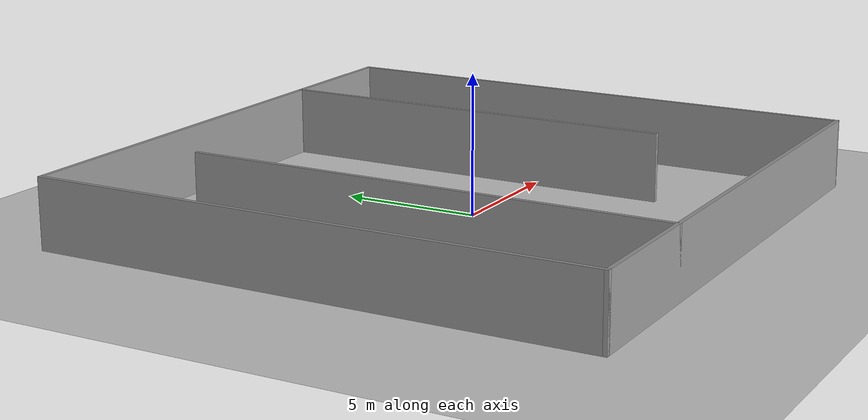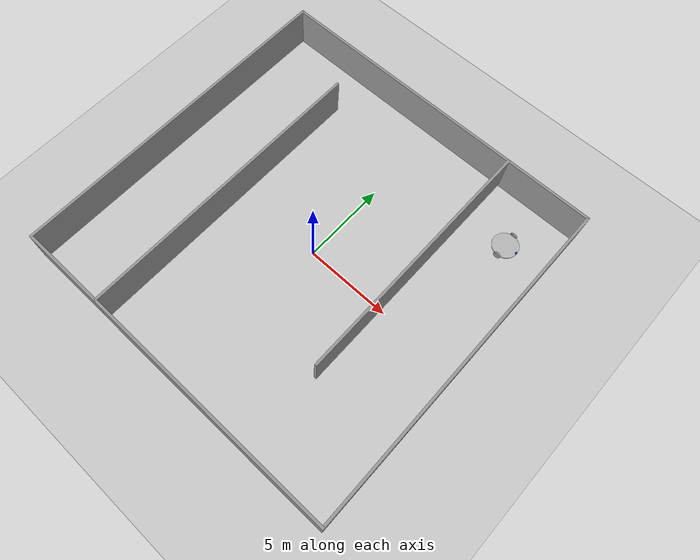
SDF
<sdf version="1.6">
 <world name="default">
  <light name="sun" type="directional">
   <pose>0 0 10 0 -0 0</pose>
   <diffuse>0.8 0.8 0.8 1</diffuse>
   <specular>0.2 0.2 0.2 1</specular>
   <attenuation>
    <range>1000</range>
    <constant>0.9</constant>
    <linear>0.01</linear>
    <quadratic>0.001</quadratic>
   </attenuation>
   <direction>-0.5 0.1 -0.9</direction>
  </light>
  <model name="ground_plane">
   <static>1</static>
   <link name="link">
    <collision name="collision">
     <geometry><plane><normal>0 0 1</normal><size>100 100</size></plane></geometry>
     <surface>
      <contact><collide_bitmask>65535</collide_bitmask></contact>
      <friction><ode><mu>100</mu><mu2>50</mu2></ode></friction>
     </surface>
    </collision>
    <visual name="visual">
     <cast_shadows>0</cast_shadows>
     <geometry><plane><normal>0 0 1</normal><size>100 100</size></plane></geometry>
     <material>
      <script><uri>file://media/materials/scripts/gazebo.material</uri><name>Gazebo/Grey</name></script>
     </material>
    </visual>
   </link>
  </model>
  <gravity>0 0 -9.8</gravity>
  <magnetic_field>6e-06 2.3e-05 -4.2e-05</magnetic_field>
  <atmosphere type="adiabatic"/>
  <physics name="default_physics" default="0" type="ode">
   <max_step_size>0.001</max_step_size>
   <real_time_factor>1</real_time_factor>
   <real_time_update_rate>1000</real_time_update_rate>
  </physics>
  <scene><ambient>0.4 0.4 0.4 1</ambient><background>0.7 0.7 0.7 1</background><shadows>1</shadows></scene>
  <spherical_coordinates>
   <surface_model>EARTH_WGS84</surface_model>
   <latitude_deg>0</latitude_deg>
   <longitude_deg>0</longitude_deg>
   <elevation>0</elevation>
   <heading_deg>0</heading_deg>
  </spherical_coordinates>
  <model name="maze2">
   <pose>-0.3178 0.201474 0 0 -0 0</pose>
   <link name="Wall_28">
    <collision name="Wall_28_Collision">
     <geometry><box><size>20.15 0.15 2.5</size></box></geometry>
     <pose>0 0 1.25 0 -0 0</pose>
    </collision>
    <visual name="Wall_28_Visual">
     <pose>0 0 1.25 0 -0 0</pose>
     <geometry><box><size>20.15 0.15 2.5</size></box></geometry>
     <material>
      <script><uri>file://media/materials/scripts/gazebo.material</uri><name>Gazebo/Grey</name></script>
      <ambient>1 1 1 1</ambient>
     </material>
     <meta><layer>0</layer></meta>
    </visual>
    <pose>-10 0 0 0 -0 1.5708</pose>
   </link>
   <link name="Wall_29">
    <collision name="Wall_29_Collision">
     <geometry><box><size>0.15 0.15 2.5</size></box></geometry>
     <pose>0 0 1.25 0 -0 0</pose>
    </collision>
    <visual name="Wall_29_Visual">
     <pose>0 0 1.25 0 -0 0</pose>
     <geometry><box><size>0.15 0.15 2.5</size></box></geometry>
     <material>
      <script><uri>file://media/materials/scripts/gazebo.material</uri><name>Gazebo/Grey</name></script>
      <ambient>1 1 1 1</ambient>
     </material>
     <meta><layer>0</layer></meta>
    </visual>
    <pose>-10 10 0 0 -0 0</pose>
   </link>
   <link name="Wall_30">
    <collision name="Wall_30_Collision">
     <geometry><box><size>0.15 0.15 2.5</size></box></geometry>
     <pose>0 0 1.25 0 -0 0</pose>
    </collision>
    <visual name="Wall_30_Visual">
     <pose>0 0 1.25 0 -0 0</pose>
     <geometry><box><size>0.15 0.15 2.5</size></box></geometry>
     <material>
      <script><uri>file://media/materials/scripts/gazebo.material</uri><name>Gazebo/Grey</name></script>
      <ambient>1 1 1 1</ambient>
     </material>
     <meta><layer>0</layer></meta>
    </visual>
    <pose>-10 10 0 0 -0 0</pose>
   </link>
   <link name="Wall_32">
    <collision name="Wall_32_Collision">
     <geometry><box><size>20.15 0.15 2.5</size></box></geometry>
     <pose>0 0 1.25 0 -0 0</pose>
    </collision>
    <visual name="Wall_32_Visual">
     <pose>0 0 1.25 0 -0 0</pose>
     <geometry><box><size>20.15 0.15 2.5</size></box></geometry>
     <material>
      <script><uri>file://media/materials/scripts/gazebo.material</uri><name>Gazebo/Grey</name></script>
      <ambient>1 1 1 1</ambient>
     </material>
     <meta><layer>0</layer></meta>
    </visual>
    <pose>0 -10 0 0 -0 0</pose>
   </link>
   <link name="Wall_33">
    <collision name="Wall_33_Collision">
     <geometry><box><size>20.15 0.15 2.5</size></box></geometry>
     <pose>0 0 1.25 0 -0 0</pose>
    </collision>
    <visual name="Wall_33_Visual">
     <pose>0 0 1.25 0 -0 0</pose>
     <geometry><box><size>20.15 0.15 2.5</size></box></geometry>
     <material>
      <script><uri>file://media/materials/scripts/gazebo.material</uri><name>Gazebo/Grey</name></script>
      <ambient>1 1 1 1</ambient>
     </material>
     <meta><layer>0</layer></meta>
    </visual>
    <pose>10 0 0 0 -0 1.5708</pose>
   </link>
   <link name="Wall_34">
    <collision name="Wall_34_Collision">
     <geometry><box><size>20.15 0.15 2.5</size></box></geometry>
     <pose>0 0 1.25 0 -0 0</pose>
    </collision>
    <visual name="Wall_34_Visual">
     <pose>0 0 1.25 0 -0 0</pose>
     <geometry><box><size>20.15 0.15 2.5</size></box></geometry>
     <material>
      <script><uri>file://media/materials/scripts/gazebo.material</uri><name>Gazebo/Grey</name></script>
      <ambient>1 1 1 1</ambient>
     </material>
     <meta><layer>0</layer></meta>
    </visual>
    <pose>0 10 0 0 -0 3.14159</pose>
   </link>
   <link name="Wall_47">
    <collision name="Wall_47_Collision">
     <geometry><box><size>17.65 0.15 2.5</size></box></geometry>
     <pose>0 0 1.25 0 -0 0</pose>
    </collision>
    <visual name="Wall_47_Visual">
     <pose>0 0 1.25 0 -0 0</pose>
     <geometry><box><size>17.65 0.15 2.5</size></box></geometry>
     <material>
      <script><uri>file://media/materials/scripts/gazebo.material</uri><name>Gazebo/Grey</name></script>
      <ambient>1 1 1 1</ambient>
     </material>
     <meta><layer>0</layer></meta>
    </visual>
    <pose>-5 -1.25 0 0 -0 1.5708</pose>
   </link>
   <link name="Wall_50">
    <collision name="Wall_50_Collision">
     <geometry><box><size>15.15 0.15 2.5</size></box></geometry>
     <pose>0 0 1.25 0 -0 0</pose>
    </collision>
    <visual name="Wall_50_Visual">
     <pose>0 0 1.25 0 -0 0</pose>
     <geometry><box><size>15.15 0.15 2.5</size></box></geometry>
     <material>
      <script><uri>file://media/materials/scripts/gazebo.material</uri><name>Gazebo/Grey</name></script>
      <ambient>1 1 1 1</ambient>
     </material>
     <meta><layer>0</layer></meta>
    </visual>
    <pose>5 2.5 0 0 -0 1.5708</pose>
   </link>
   <static>1</static>
  </model>
  <model name="robot">
   <link name="base_footprint">
    <inertial>
     <pose>0 0 0.2 0 -0 0</pose>
     <mass>5</mass>
     <inertia><ixx>2.02829</ixx><ixy>0</ixy><ixz>0</ixz><iyy>2.87329</iyy><iyz>0</iyz><izz>2.90125</izz></inertia>
    </inertial>
    <collision name="base_footprint_fixed_joint_lump__base_link_collision">
     <pose>0 0 0.2 0 -0 0</pose>
     <geometry><cylinder><length>0.05</length><radius>0.75</radius></cylinder></geometry>
    </collision>
    <collision name="base_footprint_fixed_joint_lump__caster_wheel_back_collision_1">
     <pose>-0.65 0 0.1 0 -0 0</pose>
     <geometry><sphere><radius>0.1</radius></sphere></geometry>
     <surface><friction><ode><mu>0</mu><mu2>0</mu2></ode></friction></surface>
    </collision>
    <collision name="base_footprint_fixed_joint_lump__caster_wheel_front_collision_2">
     <pose>0.65 0 0.1 0 -0 0</pose>
     <geometry><sphere><radius>0.1</radius></sphere></geometry>
     <surface><friction><ode><mu>0</mu><mu2>0</mu2></ode></friction></surface>
    </collision>
    <visual name="base_footprint_visual">
     <pose>0 0 0 -1.42478 1.42478 3.14159</pose>
     <geometry><box><size>0.001 0.001 0.001</size></box></geometry>
     <material><script><uri>__default__</uri><name>__default__</name></script></material>
    </visual>
    <visual name="base_footprint_fixed_joint_lump__base_link_visual_1">
     <pose>0 0 0.2 0 -0 0</pose>
     <geometry><cylinder><length>0.05</length><radius>0.75</radius></cylinder></geometry>
     <material><script><uri>__default__</uri><name>__default__</name></script></material>
    </visual>
    <visual name="base_footprint_fixed_joint_lump__caster_wheel_back_visual_2">
     <pose>-0.65 0 0.1 0 -0 0</pose>
     <geometry><sphere><radius>0.1</radius></sphere></geometry>
     <material>
      <script><name>Gazebo/Grey</name><uri>file://media/materials/scripts/gazebo.material</uri></script>
     </material>
    </visual>
    <visual name="base_footprint_fixed_joint_lump__caster_wheel_front_visual_3">
     <pose>0.65 0 0.1 0 -0 0</pose>
     <geometry><sphere><radius>0.1</radius></sphere></geometry>
     <material>
      <script><name>Gazebo/Grey</name><uri>file://media/materials/scripts/gazebo.material</uri></script>
     </material>
    </visual>
    <visual name="base_footprint_fixed_joint_lump__hokuyo_link_visual_4">
     <pose>0.7 0 0.275 0 -0 0</pose>
     <geometry><box><size>0.1 0.1 0.1</size></box></geometry>
     <material>
      <script><name>Gazebo/Blue</name><uri>file://media/materials/scripts/gazebo.material</uri></script>
     </material>
    </visual>
    <sensor name="head_hokuyo_sensor" type="ray">
     <visualize>1</visualize>
     <update_rate>40</update_rate>
     <ray>
      <scan>
       <horizontal>
        <samples>720</samples>
        <resolution>1</resolution>
        <min_angle>-1.5708</min_angle>
        <max_angle>1.5708</max_angle>
       </horizontal>
       <vertical><samples>1</samples><min_angle>0</min_angle><max_angle>0</max_angle></vertical>
      </scan>
      <range><min>0.1</min><max>10</max><resolution>0.001</resolution></range>
     </ray>
     <plugin name="gazebo_ros_head_hokuyo_controller" filename="libgazebo_ros_laser.so">
      <topicName>/scan</topicName>
      <frameName>hokuyo_link</frameName>
      <robotNamespace>/</robotNamespace>
     </plugin>
     <pose>0.7 0 0.275 0 -0 0</pose>
    </sensor>
   </link>
   <link name="left_wheel">
    <pose>0 -0.75 0.2 0 -0 0</pose>
    <inertial>
     <mass>1</mass>
     <inertia><ixx>1</ixx><ixy>0</ixy><ixz>0</ixz><iyy>1</iyy><iyz>0</iyz><izz>1</izz></inertia>
    </inertial>
    <collision name="left_wheel_collision">
     <pose>0 0 0 1.5708 -0 0</pose>
     <geometry><cylinder><length>0.1</length><radius>0.2</radius></cylinder></geometry>
     <surface>
      <contact><ode><kp>1e+07</kp><kd>1</kd></ode></contact>
      <friction><ode><mu>200</mu><mu2>100</mu2></ode></friction>
     </surface>
    </collision>
    <visual name="left_wheel_visual">
     <pose>0 0 0 1.5708 -0 0</pose>
     <geometry><cylinder><length>0.1</length><radius>0.2</radius></cylinder></geometry>
     <material>
      <script><name>Gazebo/Grey</name><uri>file://media/materials/scripts/gazebo.material</uri></script>
     </material>
    </visual>
   </link>
   <joint name="left_wheel_joint" type="revolute">
    <child>left_wheel</child>
    <parent>base_footprint</parent>
    <axis>
     <xyz>0 1 0</xyz>
     <limit><lower>-1e+16</lower><upper>1e+16</upper></limit>
     <dynamics><spring_reference>0</spring_reference><spring_stiffness>0</spring_stiffness></dynamics>
     <use_parent_model_frame>1</use_parent_model_frame>
    </axis>
   </joint>
   <link name="right_wheel">
    <pose>0 0.75 0.2 0 -0 0</pose>
    <inertial>
     <mass>1</mass>
     <inertia><ixx>1</ixx><ixy>0</ixy><ixz>0</ixz><iyy>1</iyy><iyz>0</iyz><izz>1</izz></inertia>
    </inertial>
    <collision name="right_wheel_collision">
     <pose>0 0 0 1.5708 -0 0</pose>
     <geometry><cylinder><length>0.1</length><radius>0.2</radius></cylinder></geometry>
     <surface>
      <contact><ode><kp>1e+07</kp><kd>1</kd></ode></contact>
      <friction><ode><mu>200</mu><mu2>100</mu2></ode></friction>
     </surface>
    </collision>
    <visual name="right_wheel_visual">
     <pose>0 0 0 1.5708 -0 0</pose>
     <geometry><cylinder><length>0.1</length><radius>0.2</radius></cylinder></geometry>
     <material>
      <script><name>Gazebo/Grey</name><uri>file://media/materials/scripts/gazebo.material</uri></script>
     </material>
    </visual>
   </link>
   <joint name="right_wheel_joint" type="revolute">
    <child>right_wheel</child>
    <parent>base_footprint</parent>
    <axis>
     <xyz>0 1 0</xyz>
     <limit><lower>-1e+16</lower><upper>1e+16</upper></limit>
     <dynamics><spring_reference>0</spring_reference><spring_stiffness>0</spring_stiffness></dynamics>
     <use_parent_model_frame>1</use_parent_model_frame>
    </axis>
   </joint>
   <plugin name="differential_drive_controller_front" filename="libgazebo_ros_diff_drive.so">
    <rosDebugLevel>Debug</rosDebugLevel>
    <publishWheelTF>false</publishWheelTF>
    <robotNamespace>/</robotNamespace>
    <publishTf>1</publishTf>
    <publishWheelJointState>false</publishWheelJointState>
    <alwaysOn>true</alwaysOn>
    <updateRate>100.0</updateRate>
    <leftJoint>left_wheel_joint</leftJoint>
    <rightJoint>right_wheel_joint</rightJoint>
    <wheelSeparation>1.5</wheelSeparation>
    <wheelDiameter>0.4</wheelDiameter>
    <broadcastTF>1</broadcastTF>
    <wheelTorque>30</wheelTorque>
    <wheelAcceleration>1.8</wheelAcceleration>
    <commandTopic>cmd_vel</commandTopic>
    <odometryFrame>odom</odometryFrame>
    <odometryTopic>odom</odometryTopic>
    <robotBaseFrame>base_footprint</robotBaseFrame>
   </plugin>
   <static>0</static>
   <plugin name="gazebo_ros_control" filename="libgazebo_ros_control.so">
    <robotNamespace>/</robotNamespace>
   </plugin>
   <pose>7.29198 7.31342 0 0 -0 0</pose>
  </model>
 </world>
</sdf>
